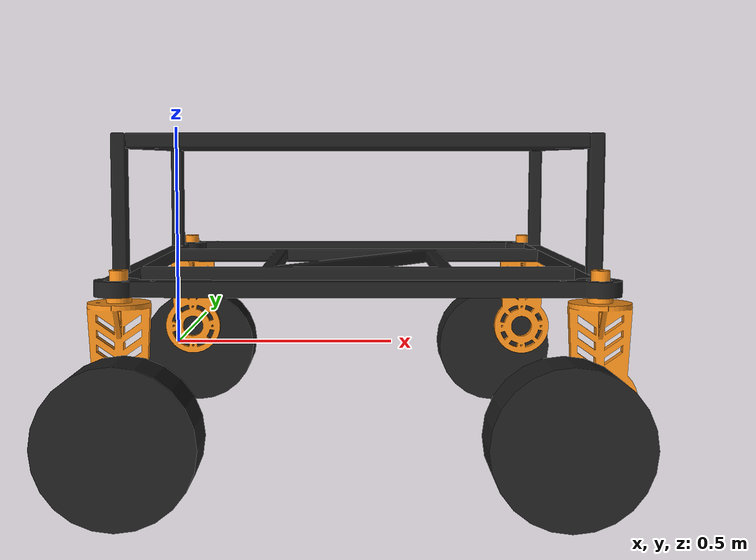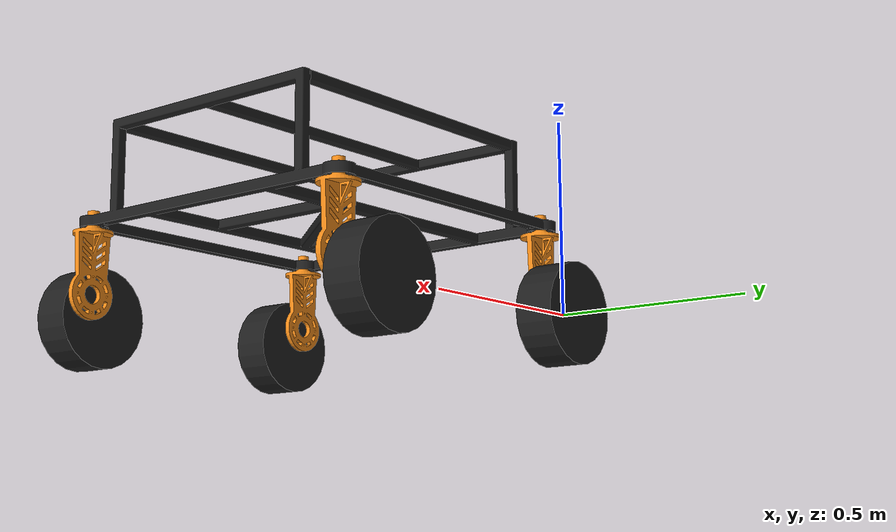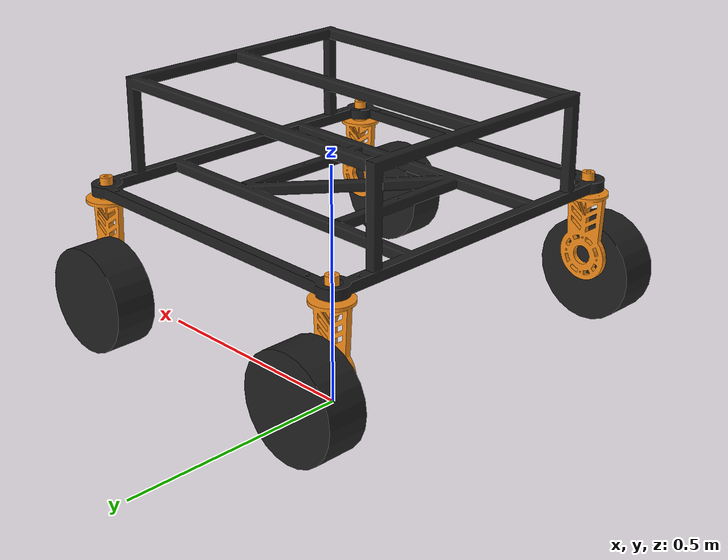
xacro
<?xml version="1.0" ?>
<robot name="bot_4wd" xmlns:xacro="http://ros.org/wiki/xacro">
  <!--xacro:include filename="$(find bot_4wd)/urdf/common_properties.xacro"/-->
  <xacro:include filename="$(find bot_4wd)/urdf/bot_4wd.gazebo"/>
    <!--  xacro:include filename="$(find bot_4wd)/urdf/macro.xacro" /-->

  <link name="base_footprint">

  </link>
<!-- Base_frame-->
  <joint name="base_joint" type="fixed">
    <parent link="base_footprint"/>
    <child link="base_link"/>
    <origin xyz="0.0 0.0 0.0" rpy="0 0 0"/>
  </joint>

  <link name="base_link">
    <visual>
      <origin xyz="0 0 0.21" rpy="0 0 0"/>
      <geometry>
        <mesh filename="$(find bot_4wd)/urdf/meshes/base_frame.dae" scale="1 1 1"/>
      </geometry>
      <material name="light_black"/>
    </visual>

    <collision>
      <origin xyz="-0.0 0 0.00" rpy="0 0 0"/>
      <geometry>
        <mesh filename="$(find bot_4wd)/urdf/meshes/base_frame.dae" scale="1 1 1"/>
      </geometry>
    </collision>

    <inertial>
      <origin xyz="0 0 0" rpy="0 0 0"/>
      <mass value="8.2573504e-01"/>
      <inertia ixx="2.2124416e-03" ixy="-1.2294101e-05" ixz="3.4938785e-05"
               iyy="2.1193702e-03" iyz="-5.0120904e-06"
               izz="2.0064271e-03" />
    </inertial>
  </link>

<!--knuckle-->

  <joint name="forward_left_knuckle_joint" type="fixed">
    <parent link="base_link"/>
    <child link="forward_left_knuckle_link"/>
    <origin xyz="0.4 -0.018 0.12" rpy="0 0 0"/>
    <axis xyz="0 0 1"/>
  </joint>

  <link name="forward_left_knuckle_link">
    <visual>
      <origin xyz="0.4 -0.018 0.12" rpy="0 0 0"/>
      <geometry>
        <mesh filename="$(find bot_4wd)/urdf/meshes/knuckle.dae" />
      </geometry>
      <material name="dark"/>
    </visual>

    <collision>
      <origin xyz="0.4 -0.018 0.12" rpy="0 0 0"/>
      <geometry>
      <mesh filename="$(find bot_4wd)/urdf/meshes/knuckle.dae" />
      </geometry>
    </collision>

    <inertial>
      <origin xyz="0 0 0" />
      <mass value="2.8498940e-02" />
      <inertia ixx="1.1175580e-05" ixy="-4.2369783e-11" ixz="-5.9381719e-09"
               iyy="1.1192413e-05" iyz="-1.4400107e-11"
               izz="2.0712558e-05" />
      </inertial>
  </link>

  <joint name="forward_right_knuckle_joint" type="fixed">
    <parent link="base_link"/>
    <child link="forward_right_knuckle_link"/>
    <origin xyz="0.4 -0.43 0.12" rpy="0 0 0"/>
    <axis xyz="0 0 1"/>
  </joint>

  <link name="forward_right_knuckle_link">
    <visual>
      <origin xyz="0.4 -0.43 0.12" rpy="0 0 0"/>
      <geometry>
        <mesh filename="$(find bot_4wd)/urdf/meshes/knuckle.dae" />
      </geometry>
      <material name="dark"/>
    </visual>

    <collision>
      <origin xyz="0.4 -0.43 0.12" rpy="0 0 0"/>
      <geometry>
      <mesh filename="$(find bot_4wd)/urdf/meshes/knuckle.dae" />
      </geometry>
    </collision>

    <inertial>
      <origin xyz="0 0 0" />
      <mass value="2.8498940e-02" />
      <inertia ixx="1.1175580e-05" ixy="-4.2369783e-11" ixz="-5.9381719e-09"
               iyy="1.1192413e-05" iyz="-1.4400107e-11"
               izz="2.0712558e-05" />
      </inertial>
  </link>

  <joint name="backward_left_knuckle_joint" type="fixed">
    <parent link="base_link"/>
    <child link="backward_left_knuckle_link"/>
    <origin xyz="0.02 -0.018 0.12" rpy="0 0 0"/>
    <axis xyz="0 0 1"/>
  </joint>

  <link name="backward_left_knuckle_link">
    <visual>
      <origin xyz="0.02 -0.018 0.12" rpy="0 0 0"/>
      <geometry>
        <mesh filename="$(find bot_4wd)/urdf/meshes/knuckle.dae" />
      </geometry>
      <material name="dark"/>
    </visual>

    <collision>
      <origin xyz="0.02 -0.018 0.12" rpy="0 0 0"/>
      <geometry>
      <mesh filename="$(find bot_4wd)/urdf/meshes/knuckle.dae" />
      </geometry>
    </collision>

    <inertial>
      <origin xyz="0 0 0" />
      <mass value="2.8498940e-02" />
      <inertia ixx="1.1175580e-05" ixy="-4.2369783e-11" ixz="-5.9381719e-09"
               iyy="1.1192413e-05" iyz="-1.4400107e-11"
               izz="2.0712558e-05" />
      </inertial>
  </link>

  <joint name="backward_right_knuckle_joint" type="fixed">
    <parent link="base_link"/>
    <child link="backward_right_knuckle_link"/>
    <origin xyz="0.02 -0.43 0.12" rpy="0 0 0"/>
    <axis xyz="0 0 1"/>
  </joint>

  <link name="backward_right_knuckle_link">
    <visual>
      <origin xyz="0.02 -0.43 0.12" rpy="0 0 0"/>
      <geometry>
        <mesh filename="$(find bot_4wd)/urdf/meshes/knuckle.dae" />
      </geometry>
      <material name="dark"/>
    </visual>

    <collision>
      <origin xyz="0.02 -0.43 0.12" rpy="0 0 0"/>
      <geometry>
      <mesh filename="$(find bot_4wd)/urdf/meshes/knuckle.dae" />
      </geometry>
    </collision>

    <inertial>
      <origin xyz="0 0 0" />
      <mass value="2.8498940e-02" />
      <inertia ixx="1.1175580e-05" ixy="-4.2369783e-11" ixz="-5.9381719e-09"
               iyy="1.1192413e-05" iyz="-1.4400107e-11"
               izz="2.0712558e-05" />
      </inertial>
  </link>

<!-- Wheel-->

  <joint name="forward_left_wheel_joint" type="continuous">
    <parent link="forward_left_knuckle_link"/>
    <child link="forward_left_wheel_link"/>
    <origin xyz="  -0.35 0.05 -0.127" rpy="0 0 0"/>
    <axis xyz="0 1 0 "/>
  </joint>

  <link name="forward_left_wheel_link">
    <visual>
      <origin xyz="0 0 0" rpy="1.57 0 0"/>
      <geometry>
        <cylinder length="0.1" radius="0.127"/>
      </geometry>
      <material name="dark"/>
    </visual>

    <collision>
      <origin xyz="0 0 0" rpy="01.57 0 0"/>
      <geometry>
      <cylinder length="0.1" radius="0.127"/>
      </geometry>
    </collision>

    <inertial>
      <origin xyz="0 0 0" />
      <mass value="2.8498940e-02" />
      <inertia ixx="1.1175580e-05" ixy="-4.2369783e-11" ixz="-5.9381719e-09"
               iyy="1.1192413e-05" iyz="-1.4400107e-11"
               izz="2.0712558e-05" />
      </inertial>
  </link>

  <joint name="backward_left_wheel_joint" type="continuous">
    <parent link="backward_left_knuckle_link"/>
    <child link="backward_left_wheel_link"/>
    <origin xyz="0.72 0.05 -0.127" rpy="0 0 0"/>
    <axis xyz="0 1 0 "/>
  </joint>

  <link name="backward_left_wheel_link">
    <visual>
      <origin xyz="0 0 0" rpy="1.57 0 0"/>
      <geometry>
        <cylinder length="0.1" radius="0.127"/>
      </geometry>
      <material name="dark"/>
    </visual>

    <collision>
      <origin xyz="0 0 0" rpy="01.57 0 0"/>
      <geometry>
      <cylinder length="0.1" radius="0.127"/>
      </geometry>
    </collision>

    <inertial>
      <origin xyz="0 0 0" />
      <mass value="2.8498940e-02" />
      <inertia ixx="1.1175580e-05" ixy="-4.2369783e-11" ixz="-5.9381719e-09"
               iyy="1.1192413e-05" iyz="-1.4400107e-11"
               izz="2.0712558e-05" />
      </inertial>
  </link>

  <joint name="forward_right_wheel_joint" type="continuous">
    <parent link="forward_right_knuckle_link"/>
    <child link="forward_right_wheel_link"/>
    <origin xyz="  -0.35 -0.50 -0.127" rpy="0 0 0"/>
    <axis xyz="0 1 0 "/>
  </joint>

  <link name="forward_right_wheel_link">
    <visual>
      <origin xyz="0 0 0" rpy="1.57 0 0"/>
      <geometry>
        <cylinder length="0.1" radius="0.127"/>
      </geometry>
      <material name="dark"/>
    </visual>

    <collision>
      <origin xyz="0 0 0" rpy="01.57 0 0"/>
      <geometry>
      <cylinder length="0.1" radius="0.127"/>
      </geometry>
    </collision>

    <inertial>
      <origin xyz="0 0 0" />
      <mass value="2.8498940e-02" />
      <inertia ixx="1.1175580e-05" ixy="-4.2369783e-11" ixz="-5.9381719e-09"
               iyy="1.1192413e-05" iyz="-1.4400107e-11"
               izz="2.0712558e-05" />
      </inertial>
  </link>

  <joint name="backward_right_wheel_joint" type="continuous">
    <parent link="backward_right_knuckle_link"/>
    <child link="backward_right_wheel_link"/>
    <origin xyz="0.72 -0.50 -0.127" rpy="0 0 0"/>
    <axis xyz="0 1 0 "/>
  </joint>

  <link name="backward_right_wheel_link">
    <visual>
      <origin xyz="0 0 0" rpy="1.57 0 0"/>
      <geometry>
        <cylinder length="0.1" radius="0.127"/>
      </geometry>
      <material name="dark"/>
    </visual>

    <collision>
      <origin xyz="0 0 0" rpy="01.57 0 0"/>
      <geometry>
      <cylinder length="0.1" radius="0.127"/>
      </geometry>
    </collision>

    <inertial>
      <origin xyz="0 0 0" />
      <mass value="2.8498940e-02" />
      <inertia ixx="1.1175580e-05" ixy="-4.2369783e-11" ixz="-5.9381719e-09"
               iyy="1.1192413e-05" iyz="-1.4400107e-11"
               izz="2.0712558e-05" />
      </inertial>
  </link>

</robot>
